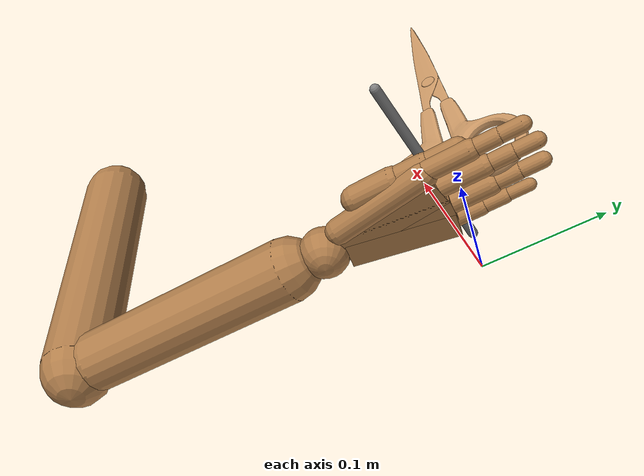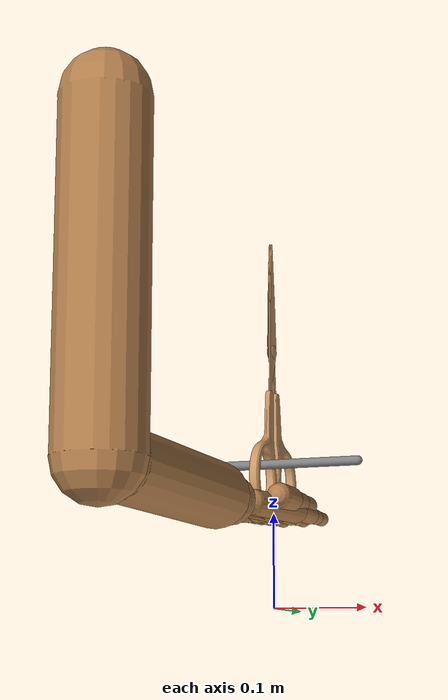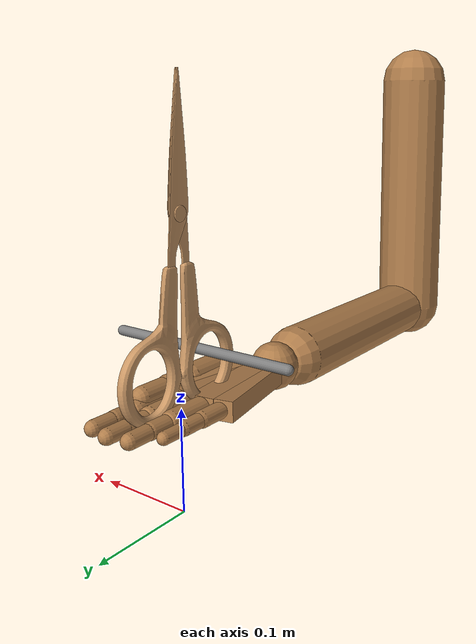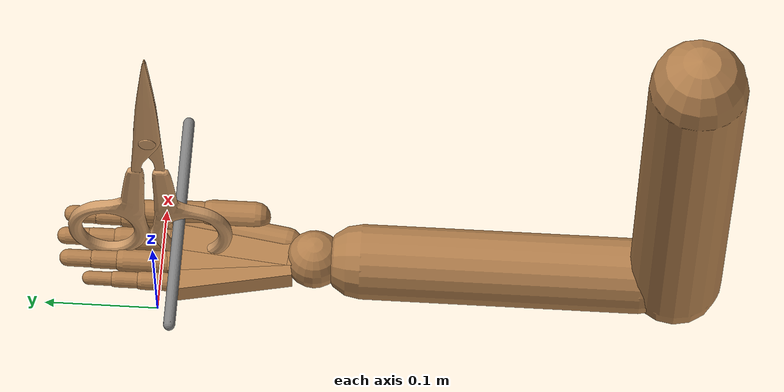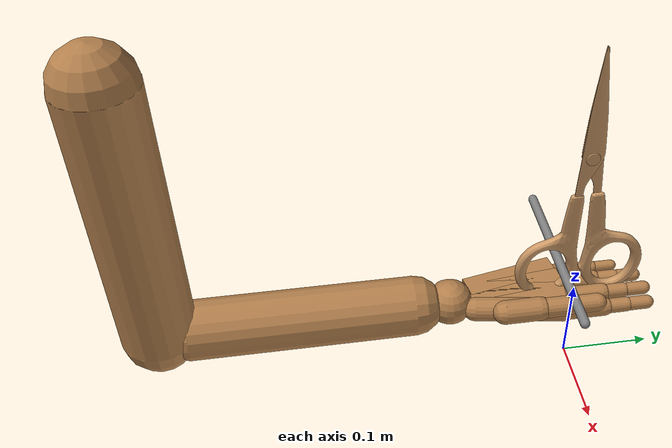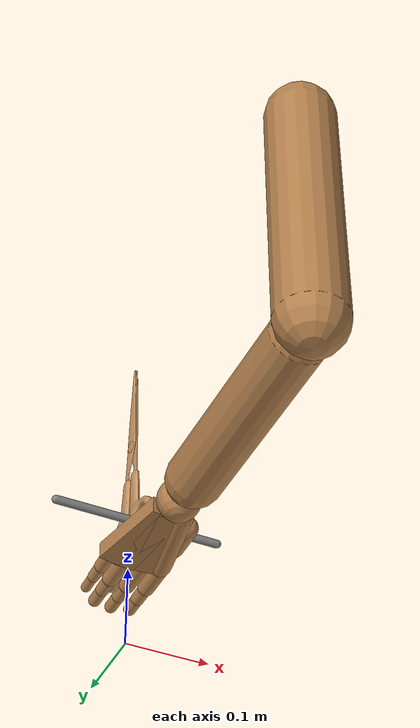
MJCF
<?xml version="1.0" encoding="utf-8"?>
<mujoco model="scissor">
	<compiler angle="radian" coordinate="local" inertiafromgeom="true" meshdir="stls/"/>
	<option integrator="RK4" timestep="0.0001"/>
	<size nstack="10000" nconmax="150"/>

	<!-- default classes -->
	<default>
		<default class="scissor">
			<mesh scale="0.035 0.035 0.035"/>
			<!-- Need to change the joint pos value according with the scale -->
			<!-- The joint pos with scale x is x*(0 -0.099609 0.762755) -->
			<joint pos="0 -0.003486315 0.026696425" range="0 2.5132741228718" armature="0.001" damping="0.001" limited="true" type="hinge"/>
			<geom type="mesh" rgba=".8 .6 .4 1"/>
			<default class="scissor_contact">
				<geom type="mesh" mass="0" friction="1 0.005 0.0001" rgba="1 1 1 0"/>
			</default>
		</default>

		<default class="Adroit">
			<geom friction="1 0.005 0.001" condim="3" margin="0.000" contype="1" conaffinity="1"/>
			<joint limited="true" damping="0.05" armature=".001" margin="0.01" frictionloss="0.001"/>
			<tendon limited="true"/>
			<site size="0.005" rgba=".4 .9 .4 0"/>
			<default class="D_Touch">
				<site type="box" size="0.009 0.004 0.013" pos="0 -.004 .018" rgba=".8 .8 .8 0" group="4"/>
			</default>
			<default class="DC_Hand">
				<geom contype="1" conaffinity="0" material="self" group="2"/>
			</default>
		</default>

		<default class="humanoid">
			<geom type="capsule" material="self" group="2"/>
			<default class="stiff_medium">
				<joint stiffness="10" damping="2"/>
			</default>
			<default class="sensor_site">
				<site type="sphere" size="0.01" group="4" rgba="1 0 0 0"/>
			</default>
		</default>

	</default>

	<!-- assets -->
	<asset>
		<include file="scissor_assets.xml"/>
		<material name="self" rgba=".7 .5 .3 1"/>
	</asset>

	<visual>
		<scale forcewidth="0.01" contactwidth="0.003"/>
	</visual>

	<!-- contact pairs -->
	<contact>
		<include file="contacts/hand_contacts.xml"/>
		<include file="contacts/hand_scissor_contacts.xml"/>
	</contact>

	<!-- tendons -->
	<tendon>
		<include file="hand_tendon.xml"/>
	</tendon>

	<worldbody>
		<light diffuse="1 1 1" dir="-0 1.3 -1.3" directional="true" exponent="1" pos="0 0 1.3" specular=".1 .1 .1" castshadow="false"/>
		<include file="body/scissor.xml"/>
		<include file="body/arm.xml"/>
		<geom name="stick" type="capsule" fromto="-0.1 -0.025 0.15 0.1 -0.025 0.15" size="0.005" condim="4"/>
	</worldbody>
</mujoco>

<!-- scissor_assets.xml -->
<mujoco>
	<mesh class="scissor" file="scissor/knob.stl"/>
	<mesh class="scissor" file="scissor/scb.stl"/>
	<mesh class="scissor" file="scissor/sct.stl"/>
	<mesh class="scissor" file="scissor/scb_handle.stl"/>
	<mesh class="scissor" file="scissor/sct_handle.stl"/>
	<mesh class="scissor" file="scissor/scb_handle000.stl"/>
	<mesh class="scissor" file="scissor/scb_handle001.stl"/>
	<mesh class="scissor" file="scissor/scb_handle002.stl"/>
	<mesh class="scissor" file="scissor/scb_handle003.stl"/>
	<mesh class="scissor" file="scissor/scb_handle004.stl"/>
	<mesh class="scissor" file="scissor/scb_handle005.stl"/>
	<mesh class="scissor" file="scissor/scb_handle006.stl"/>
	<mesh class="scissor" file="scissor/scb_handle007.stl"/>
	<mesh class="scissor" file="scissor/scb_handle008.stl"/>
	<mesh class="scissor" file="scissor/scb_handle009.stl"/>
	<mesh class="scissor" file="scissor/sct_handle000.stl"/>
	<mesh class="scissor" file="scissor/sct_handle001.stl"/>
	<mesh class="scissor" file="scissor/sct_handle002.stl"/>
	<mesh class="scissor" file="scissor/sct_handle003.stl"/>
	<mesh class="scissor" file="scissor/sct_handle004.stl"/>
	<mesh class="scissor" file="scissor/sct_handle005.stl"/>
	<mesh class="scissor" file="scissor/sct_handle006.stl"/>
	<mesh class="scissor" file="scissor/sct_handle007.stl"/>
	<mesh class="scissor" file="scissor/sct_handle008.stl"/>
	<mesh class="scissor" file="scissor/sct_handle009.stl"/>
</mujoco>

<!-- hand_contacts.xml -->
<mujoco>
<pair geom1="C_rfmiddle" geom2="C_mf" margin="10" gap="100"/>
<pair geom1="C_rfmiddle" geom2="C_mfdistal" margin="10" gap="100"/>
<pair geom1="C_rfmiddle" geom2="C_mfmiddle" margin="10" gap="100"/>
<pair geom1="C_rfmiddle" geom2="C_mfproximal" margin="10" gap="100"/>
<pair geom1="C_rfdistal" geom2="C_mf" margin="10" gap="100"/>
<pair geom1="C_rfdistal" geom2="C_mfmiddle" margin="10" gap="100"/>
<pair geom1="C_rfdistal" geom2="C_mfproximal" margin="10" gap="100"/>
<pair geom1="C_rfproximal" geom2="C_mf" margin="10" gap="100"/>
<pair geom1="C_rfproximal" geom2="C_mfdistal" margin="10" gap="100"/>
<pair geom1="C_rfproximal" geom2="C_mfmiddle" margin="10" gap="100"/>
<pair geom1="C_rfproximal" geom2="C_mfproximal" margin="10" gap="100"/>
<pair geom1="C_mfmiddle" geom2="C_ff" margin="10" gap="100"/>
<pair geom1="C_mfmiddle" geom2="C_ffdistal" margin="10" gap="100"/>
<pair geom1="C_mfmiddle" geom2="C_ffmiddle" margin="10" gap="100"/>
<pair geom1="C_mfmiddle" geom2="C_ffproximal" margin="10" gap="100"/>
<pair geom1="C_mfdistal" geom2="C_ff" margin="10" gap="100"/>
<pair geom1="C_mfdistal" geom2="C_ffmiddle" margin="10" gap="100"/>
<pair geom1="C_mfdistal" geom2="C_ffproximal" margin="10" gap="100"/>
<pair geom1="C_mfproximal" geom2="C_ff" margin="10" gap="100"/>
<pair geom1="C_mfproximal" geom2="C_ffdistal" margin="10" gap="100"/>
<pair geom1="C_mfproximal" geom2="C_ffmiddle" margin="10" gap="100"/>
<pair geom1="C_mfproximal" geom2="C_ffproximal" margin="10" gap="100"/>
<pair geom1="C_rfmiddle" geom2="C_lf" margin="10" gap="100"/>
<pair geom1="C_rfmiddle" geom2="C_lfdistal" margin="10" gap="100"/>
<pair geom1="C_rfmiddle" geom2="C_lfmiddle" margin="10" gap="100"/>
<pair geom1="C_rfmiddle" geom2="C_lfproximal" margin="10" gap="100"/>
<pair geom1="C_rfdistal" geom2="C_lf" margin="10" gap="100"/>
<pair geom1="C_rfdistal" geom2="C_lfmiddle" margin="10" gap="100"/>
<pair geom1="C_rfdistal" geom2="C_lfproximal" margin="10" gap="100"/>
<pair geom1="C_rfproximal" geom2="C_lf" margin="10" gap="100"/>
<pair geom1="C_rfproximal" geom2="C_lfdistal" margin="10" gap="100"/>
<pair geom1="C_rfproximal" geom2="C_lfmiddle" margin="10" gap="100"/>
<pair geom1="C_rfproximal" geom2="C_lfproximal" margin="10" gap="100"/>
</mujoco>

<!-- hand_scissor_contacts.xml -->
<mujoco>
<pair geom1="C_th" geom2="sct_handle000" margin="10" gap="20"/>
<pair geom1="C_th" geom2="sct_handle001" margin="10" gap="20"/>
<pair geom1="C_th" geom2="sct_handle002" margin="10" gap="20"/>
<pair geom1="C_th" geom2="sct_handle003" margin="10" gap="20"/>
<pair geom1="C_th" geom2="sct_handle004" margin="10" gap="20"/>
<pair geom1="C_th" geom2="sct_handle005" margin="10" gap="20"/>
<pair geom1="C_th" geom2="sct_handle006" margin="10" gap="20"/>
<pair geom1="C_th" geom2="sct_handle007" margin="10" gap="20"/>
<pair geom1="C_th" geom2="sct_handle008" margin="10" gap="20"/>
<pair geom1="C_th" geom2="sct_handle009" margin="10" gap="20"/>
<pair geom1="C_ff" geom2="scb_handle000" margin="10" gap="20"/>
<pair geom1="C_ff" geom2="scb_handle001" margin="10" gap="20"/>
<pair geom1="C_ff" geom2="scb_handle002" margin="10" gap="20"/>
<pair geom1="C_ff" geom2="scb_handle003" margin="10" gap="20"/>
<pair geom1="C_ff" geom2="scb_handle004" margin="10" gap="20"/>
<pair geom1="C_ff" geom2="scb_handle005" margin="10" gap="20"/>
<pair geom1="C_ff" geom2="scb_handle006" margin="10" gap="20"/>
<pair geom1="C_ff" geom2="scb_handle007" margin="10" gap="20"/>
<pair geom1="C_ff" geom2="scb_handle008" margin="10" gap="20"/>
<pair geom1="C_ff" geom2="scb_handle009" margin="10" gap="20"/>
<pair geom1="C_mf" geom2="scb_handle000" margin="10" gap="20"/>
<pair geom1="C_mf" geom2="scb_handle001" margin="10" gap="20"/>
<pair geom1="C_mf" geom2="scb_handle002" margin="10" gap="20"/>
<pair geom1="C_mf" geom2="scb_handle003" margin="10" gap="20"/>
<pair geom1="C_mf" geom2="scb_handle004" margin="10" gap="20"/>
<pair geom1="C_mf" geom2="scb_handle005" margin="10" gap="20"/>
<pair geom1="C_mf" geom2="scb_handle006" margin="10" gap="20"/>
<pair geom1="C_mf" geom2="scb_handle007" margin="10" gap="20"/>
<pair geom1="C_mf" geom2="scb_handle008" margin="10" gap="20"/>
<pair geom1="C_mf" geom2="scb_handle009" margin="10" gap="20"/>
<pair geom1="C_rf" geom2="scb_handle000" margin="10" gap="20"/>
<pair geom1="C_rf" geom2="scb_handle001" margin="10" gap="20"/>
<pair geom1="C_rf" geom2="scb_handle002" margin="10" gap="20"/>
<pair geom1="C_rf" geom2="scb_handle003" margin="10" gap="20"/>
<pair geom1="C_rf" geom2="scb_handle004" margin="10" gap="20"/>
<pair geom1="C_rf" geom2="scb_handle005" margin="10" gap="20"/>
<pair geom1="C_rf" geom2="scb_handle006" margin="10" gap="20"/>
<pair geom1="C_rf" geom2="scb_handle007" margin="10" gap="20"/>
<pair geom1="C_rf" geom2="scb_handle008" margin="10" gap="20"/>
<pair geom1="C_rf" geom2="scb_handle009" margin="10" gap="20"/>
</mujoco>

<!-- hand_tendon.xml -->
<mujoco>
<fixed name="T_FFJ3r" range="-0.018 0.018" user="1204">
	<joint joint="FFJ3" coef="0.010"/>
</fixed>
<fixed name="T_FFJ3l" range="-0.018 0.018" user="1205">
	<joint joint="FFJ3" coef="-0.010"/>
</fixed>
<fixed name="T_FFJ2u" range="-0.007 0.030" user="1202">
	<joint joint="FFJ2" coef="0.010"/>
</fixed>
<fixed name="T_FFJ2d" range="-0.030 0.007" user="1203">
	<joint joint="FFJ2" coef="-0.010"/>
</fixed>
<fixed name="T_FFJ1c" range="-0.0010 0.0010">
	<joint joint="FFJ0" coef="0.00705"/>
	<joint joint="FFJ1" coef="-0.00805"/>
</fixed>
<fixed name="T_FFJ1u" range="-0.007 0.030" user="1200">
	<joint joint="FFJ0" coef="0.00705"/>
	<joint joint="FFJ1" coef="0.00805"/>
</fixed>
<fixed name="T_FFJ1d" range="-0.030 0.007" user="1201">
	<joint joint="FFJ0" coef="-0.00705"/>
	<joint joint="FFJ1" coef="-0.00805"/>
</fixed>
<fixed name="T_MFJ3r" range="-0.018 0.018" user="1210">
	<joint joint="MFJ3" coef="0.010"/>
</fixed>
<fixed name="T_MFJ3l" range="-0.018 0.018" user="1211">
	<joint joint="MFJ3" coef="-0.010"/>
</fixed>
<fixed name="T_MFJ2u" range="-0.007 0.030" user="1208">
	<joint joint="MFJ2" coef="0.010"/>
</fixed>
<fixed name="T_MFJ2d" range="-0.030 0.007" user="1209">
	<joint joint="MFJ2" coef="-0.010"/>
</fixed>
<fixed name="T_MFJ1c" range="-0.001 0.001">
	<joint joint="MFJ0" coef="0.00705"/>
	<joint joint="MFJ1" coef="-0.00805"/>
</fixed>
<fixed name="T_MFJ1u" range="-0.007 0.030" user="1206">
	<joint joint="MFJ0" coef="0.00705"/>
	<joint joint="MFJ1" coef="0.00805"/>
</fixed>
<fixed name="T_MFJ1d" range="-0.030 0.007" user="1207">
	<joint joint="MFJ0" coef="-0.00705"/>
	<joint joint="MFJ1" coef="-0.00805"/>
</fixed>
<fixed name="T_RFJ3r" range="-0.018 0.018" user="1216">
	<joint joint="RFJ3" coef="0.010"/>
</fixed>
<fixed name="T_RFJ3l" range="-0.018 0.018" user="1217">
	<joint joint="RFJ3" coef="-0.010"/>
</fixed>
<fixed name="T_RFJ2u" range="-0.007 0.030" user="1214">
	<joint joint="RFJ2" coef="0.010"/>
</fixed>
<fixed name="T_RFJ2d" range="-0.030 0.007" user="1215">
	<joint joint="RFJ2" coef="-0.010"/>
</fixed>
<fixed name="T_RFJ1c" range="-0.001 0.001">
	<joint joint="RFJ0" coef="0.00705"/>
	<joint joint="RFJ1" coef="-0.00805"/>
</fixed>
<fixed name="T_RFJ1u" range="-0.007 0.030" user="1212">
	<joint joint="RFJ0" coef="0.00705"/>
	<joint joint="RFJ1" coef="0.00805"/>
</fixed>
<fixed name="T_RFJ1d" range="-0.030 0.007" user="1213">
	<joint joint="RFJ0" coef="-0.00705"/>
	<joint joint="RFJ1" coef="-0.00805"/>
</fixed>
<fixed name="T_THJ4a" range="-0.018 0.018" user="1234">
	<joint joint="THJ4" coef="0.01636"/>
</fixed>
<fixed name="T_THJ4c" range="-0.018 0.018" user="1235">
	<joint joint="THJ4" coef="-0.01636"/>
</fixed>
<fixed name="T_THJ3u" range="-0.007 0.030" user="1232">
	<joint joint="THJ3" coef="0.010"/>
</fixed>
<fixed name="T_THJ3d" range="-0.030 0.007" user="1233">
	<joint joint="THJ3" coef="-0.010"/>
</fixed>
<fixed name="T_THJ2u" range="-0.018 0.018" user="1230">
	<joint joint="THJ2" coef="0.011"/>
</fixed>
<fixed name="T_THJ2d" range="-0.018 0.018" user="1231">
	<joint joint="THJ2" coef="-0.011"/>
</fixed>
<fixed name="T_THJ1r" range="-0.018 0.018" user="1228">
	<joint joint="THJ1" coef="0.011"/>
</fixed>
<fixed name="T_THJ1l" range="-0.018 0.018" user="1229">
	<joint joint="THJ1" coef="-0.011"/>
</fixed>
<fixed name="T_THJ0r" range="-0.030 0.007" user="1226">
	<joint joint="THJ0" coef="0.009"/>
</fixed>
<fixed name="T_THJ0l" range="-0.007 0.030" user="1227">
	<joint joint="THJ0" coef="-0.009"/>
</fixed>
<fixed name="T_LFJ3r" range="-0.018 0.018">
	<joint joint="LFJ3" coef="0.010"/>
</fixed>
<fixed name="T_LFJ3l" range="-0.018 0.018">
	<joint joint="LFJ3" coef="-0.010"/>
</fixed>
<fixed name="T_LFJ2u" range="-0.007 0.030">
	<joint joint="LFJ2" coef="0.010"/>
</fixed>
<fixed name="T_LFJ2d" range="-0.030 0.007">
	<joint joint="LFJ2" coef="-0.010"/>
</fixed>
<fixed name="T_LFJ1c" range="-0.001 0.001">
	<joint joint="LFJ0" coef="0.00705"/>
	<joint joint="LFJ1" coef="-0.00805"/>
</fixed>
<fixed name="T_LFJ1u" range="-0.007 0.030">
	<joint joint="LFJ0" coef="0.00705"/>
	<joint joint="LFJ1" coef="0.00805"/>
</fixed>
<fixed name="T_LFJ1d" range="-0.030 0.007">
	<joint joint="LFJ0" coef="-0.00705"/>
	<joint joint="LFJ1" coef="-0.00805"/>
</fixed>
</mujoco>

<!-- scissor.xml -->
<mujoco>
<body pos="0 0 0.25" childclass="scissor">
	<freejoint/>
	<geom name="knob" mesh="knob"/>
	<geom name="scb" mesh="scb"/>
	<geom name="scb_handle" mesh="scb_handle" contype="0" conaffinity="0"/>
	<geom class="scissor_contact" name="scb_handle000" mesh="scb_handle000"/>
	<geom class="scissor_contact" name="scb_handle001" mesh="scb_handle001"/>
	<geom class="scissor_contact" name="scb_handle002" mesh="scb_handle002"/>
	<geom class="scissor_contact" name="scb_handle003" mesh="scb_handle003"/>
	<geom class="scissor_contact" name="scb_handle004" mesh="scb_handle004"/>
	<geom class="scissor_contact" name="scb_handle005" mesh="scb_handle005"/>
	<geom class="scissor_contact" name="scb_handle006" mesh="scb_handle006"/>
	<geom class="scissor_contact" name="scb_handle007" mesh="scb_handle007"/>
	<geom class="scissor_contact" name="scb_handle008" mesh="scb_handle008"/>
	<geom class="scissor_contact" name="scb_handle009" mesh="scb_handle009"/>
	<body>
		<joint name="knob" axis="1 0 0"/>
		<geom name="sct" mesh="sct"/>
		<geom name="sct_handle" mesh="sct_handle" contype="0" conaffinity="0"/>
		<geom class="scissor_contact" name="sct_handle000" mesh="sct_handle000"/>
		<geom class="scissor_contact" name="sct_handle001" mesh="sct_handle001"/>
		<geom class="scissor_contact" name="sct_handle002" mesh="sct_handle002"/>
		<geom class="scissor_contact" name="sct_handle003" mesh="sct_handle003"/>
		<geom class="scissor_contact" name="sct_handle004" mesh="sct_handle004"/>
		<geom class="scissor_contact" name="sct_handle005" mesh="sct_handle005"/>
		<geom class="scissor_contact" name="sct_handle006" mesh="sct_handle006"/>
		<geom class="scissor_contact" name="sct_handle007" mesh="sct_handle007"/>
		<geom class="scissor_contact" name="sct_handle008" mesh="sct_handle008"/>
		<geom class="scissor_contact" name="sct_handle009" mesh="sct_handle009"/>
	</body>
</body>
</mujoco>

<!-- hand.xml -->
<mujoco>
<body name="wrist" pos="-0.0 0 0.3">
	<inertial pos="0.003 0.000 0.016" quat="0.504 0.496 0.495 0.504" mass="0.3" diaginertia="0.001 0.001 0.001"/>
	<joint name="WRJ0" type="hinge" pos="0 0 0" axis="1 0 0" range="-1 1" damping="0" armature=".005" user="1122"/>
	<body name="wrist1" pos="0 0 0">
		<joint name="WRJ1" type="hinge" pos="0 0 0" axis="0 1 0" range="-1.2 1.2" damping="0" armature=".005" user="1123"/>
		<geom class="DC_Hand" name="C_wrist1" type="sphere" size="0.001"/>
		<body name="wrist2" pos="0 0 0">
			<joint name="WRJ2" type="hinge" pos="0 0 0" axis="0 0 1" range="-3.14 0" damping="0" armature=".005"/>
			<geom class="DC_Hand" name="C_wrist" type="sphere" pos="0 0 0.01" quat=".707 .707 0 0" size=".025"/>
			<body name="palm" pos="0 0 0.034">
				<body name="ff_cmc" pos="0.033 0 0.095">
					<joint name="FFJ_CMC_X" type="hinge" pos="-0.02 0 -0.095" axis="0.095 0 -0.02" range="0 0.001"/>
					<joint name="FFJ_CMC_Z" type="hinge" pos="-0.02 0 -0.095" axis="0.02 0 0.095" range="-0.001 0.001"/>
					<geom class="DC_Hand" name="C_ff_cmc" type="capsule" pos="-0.01 0 -0.0475" size="0.013 .0475" euler="0 0.16 0"/>
					<geom class="DC_Hand" name="C_ff_cmc_trick" type="capsule" pos="-0.01 0 -0.0475" size="0.013 .0475" euler="0 0.16 0"/>
					<body name="ffknuckle" pos="0.0 0 0.0">
						<inertial pos="-0.000 0.000 0.000" quat="0.520 0.854 0.006 -0.003" mass="0.008" diaginertia="0.00001 0.00001 0.00001"/>
						<joint name="FFJ3" type="hinge" pos="0 0 0" axis="0 1 0" range="-0.136 0.136" user="1103"/>
						<body name="ffproximal" pos="0 0 0">
							<inertial pos="0.000 0.000 0.023" quat="0.707 -0.004 0.004 0.707" mass="0.014" diaginertia="0.00001 0.00001 0.00001"/>
							<joint name="FFJ2" type="hinge" pos="0 0 0" axis="1 0 0" range="0 1.571" user="1102"/>
							<geom class="DC_Hand" name="C_ffproximal" type="capsule" pos="0 0 .0225" size=".01 .0225"/>
							<geom class="DC_Hand" name="C_ffproximal_trick" type="capsule" pos="0 0 .0225" size=".01 .0225"/>
							<body name="ffmiddle" pos="0 0 0.045">
								<inertial pos="-0.000 -0.000 0.011" quat="0.707 0.000 -0.000 0.707" mass="0.012" diaginertia="0.00001 0.00001 0.00001"/>
								<joint name="FFJ1" type="hinge" pos="0 0 0" axis="1 0 0" range="0 1.571" user="1101"/>
								<geom class="DC_Hand" name="C_ffmiddle" type="capsule" pos="0 0 .0125" size=".00805 .0125"/>
								<body name="ffdistal" pos="0 0 0.025">
									<inertial pos="0 -0.000 0.015" quat="0.707 -0.003 0.003 0.707" mass="0.010" diaginertia="0.00001 0.00001 0.00001"/>
									<joint name="FFJ0" type="hinge" pos="0 0 0" axis="1 0 0" range="0 1.571" user="1100"/>
									<geom class="DC_Hand" name="C_ffdistal" type="capsule" pos="0 -.00 .012" size=".0075 .011 " condim="4" euler="0 0 0"/>
									<geom class="DC_Hand" name="C_ff" type="sphere" pos="0 0 .0195" size=".0075 " condim="4"/>
									<site name="S_fftip" type="capsule" pos="0 -.00 .012" size=".0075 .011 " rgba="0 0 0 0" euler="0 0 0"/>
									<site class="D_Touch" name="Tch_fftip"/>
								</body>
							</body>
						</body>
					</body>
				</body>
				<body name="mf_cmc" pos="0.011 0 0.099">
					<joint name="MFJ_CMC_X" type="hinge" pos="-0.011 0 -0.099" axis="0.099 0 -0.011" range="0 0.01"/>
					<joint name="MFJ_CMC_Z" type="hinge" pos="-0.011 0 -0.099" axis="0.011 0 0.099" range="-0.2 0.2"/>
					<geom class="DC_Hand" name="C_mf_cmc" type="box" pos="-0.0055 0 -0.0495" size=".013 0.01 .052" euler="0 0.11 0"/>
					<body name="mfknuckle" pos="0.0 0 0.0">
						<inertial pos="-0.000 0.000 0.000" quat="0.520 0.854 0.006 -0.003" mass="0.008" diaginertia="0.00001 0.00001 0.00001"/>
						<joint name="MFJ3" type="hinge" pos="0 0 0" axis="0 1 0" range="-0.136 0.136" user="1107"/>
						<body name="mfproximal" pos="0 0 0">
							<inertial pos="0.000 0.000 0.023" quat="0.707 -0.004 0.004 0.707" mass="0.014" diaginertia="0.00001 0.00001 0.00001"/>
							<joint name="MFJ2" type="hinge" pos="0 0 0" axis="1 0 0" range="0 1.571" user="1106"/>
							<geom class="DC_Hand" name="C_mfproximal" type="capsule" pos="0 0 .0225" size=".01 .0225"/>
							<body name="mfmiddle" pos="0 0 0.045">
								<inertial pos="-0.000 -0.000 0.012" quat="0.707 0.000 -0.000 0.707" mass="0.012" diaginertia="0.00001 0.00001 0.00001"/>
								<joint name="MFJ1" type="hinge" pos="0 0 0" axis="1 0 0" range="0 1.571" user="1105"/>
								<geom class="DC_Hand" name="C_mfmiddle" type="capsule" pos="0 0 .0125" size=".00805 .0125"/>
								<body name="mfdistal" pos="0 0 0.025">
									<inertial pos="0 -0.000 0.015" quat="0.707 -0.003 0.003 0.707" mass="0.010" diaginertia="0.00001 0.00001 0.00001"/>
									<joint name="MFJ0" type="hinge" pos="0 0 0" axis="1 0 0" range="0 1.571" user="1104"/>
									<geom class="DC_Hand" name="C_mfdistal" type="capsule" pos="0 0 .012" size=".0075 .011 " condim="4" euler="0 0 0"/>
									<geom class="DC_Hand" name="C_mf" type="sphere" pos="0.0 0 .018" size=".0075 " rgba="0 0 0 0"/>
									<site name="S_mftip" type="capsule" pos="0 0 .012" size=".0075 .011 " rgba="0 0 0 0" euler="0 0 0"/>
									<site class="D_Touch" name="Tch_mftip"/>
								</body>
							</body>
						</body>
					</body>
				</body>
				<body name="rf_cmc" pos="-0.011 0 0.095">
					<joint name="RFJ_CMC_X" type="hinge" pos="0.011 0 -0.095" axis="0.095 0 0.011" range="0 0.2"/>
					<joint name="RFJ_CMC_Z" type="hinge" pos="0.011 0 -0.095" axis="-0.011 0 0.095" range="-0.0 0.69"/>
					<geom class="DC_Hand" name="C_rf_cmc" type="box" pos="0.0055 0 -0.0475" size=".013  0.01 .055" euler="0 -0.11 0"/>
					<body name="rfknuckle" pos="-0.0 0 0.0">
						<inertial pos="-0.000 0.000 0.000" quat="0.520 0.854 0.006 -0.003" mass="0.008" diaginertia="0.00001 0.00001 0.00001"/>
						<joint name="RFJ3" type="hinge" pos="0 0 0" axis="0 1 0" range="-0.136 0.136" user="1111"/>
						<body name="rfproximal" pos="0 0 0">
							<inertial pos="0.000 0.000 0.023" quat="0.707 -0.004 0.004 0.707" mass="0.014" diaginertia="0.00001 0.00001 0.00001"/>
							<joint name="RFJ2" type="hinge" pos="0 0 0" axis="1 0 0" range="0 1.571" user="1110"/>
							<geom class="DC_Hand" name="C_rfproximal" type="capsule" pos="0 0 .0225" size=".01 .0225"/>
							<body name="rfmiddle" pos="0 0 0.045">
								<inertial pos="-0.000 -0.000 0.012" quat="0.707 0.000 -0.000 0.707" mass="0.012" diaginertia="0.00001 0.00001 0.00001"/>
								<joint name="RFJ1" type="hinge" pos="0 0 0" axis="1 0 0" range="0 1.571" user="1109"/>
								<geom class="DC_Hand" name="C_rfmiddle" type="capsule" pos="0 0 .0125" size=".00805 .0125"/>
								<body name="rfdistal" pos="0 0 0.025">
									<inertial pos="0 -0.000 0.015" quat="0.707 -0.003 0.003 0.707" mass="0.010" diaginertia="0.00001 0.00001 0.00001"/>
									<joint name="RFJ0" type="hinge" pos="0 0 0" axis="1 0 0" range="0 1.571" user="1108"/>
									<geom class="DC_Hand" name="C_rfdistal" type="capsule" pos="0 -.0 .012" size=".0075 .011 " condim="4" euler="0 0 0"/>
									<geom class="DC_Hand" name="C_rf" type="sphere" pos="0.0035 0 .016" size=".0075 " rgba="0 0 0 0"/>
									<site name="S_rftip" type="capsule" pos="0 0 .012" size=".0075 .011 " rgba="0 0 0 0" euler="0 0 0"/>
									<site class="D_Touch" name="Tch_rftip"/>
								</body>
							</body>
						</body>
					</body>
				</body>
				<body name="thbase" pos="0.034 -0.009 0.029" euler="0.  0. 0">
					<inertial pos="0 0 0" mass="0.010" diaginertia="0.00001 0.00001 0.00001"/>
					<joint name="THJ4" type="hinge" pos="0 0 0" axis="0 0 -1" range="-0.01 0.01" user="1121"/>
					<joint name="THJ2" type="hinge" pos="0 0 0" axis="0 1 0" range="-1 1" user="1119"/>
					<joint name="THJ3" type="hinge" pos="0 0 0" axis="1 0 0" range="-0. 1" user="1120"/>
					<body name="thproximal" pos="0 0 0" euler="0 0 -0.">
						<inertial pos="-0.000 -0.000 0.017" quat="0.982 -0.000 0.001 0.191" mass="0.016" diaginertia="0.00001 0.00001 0.00001"/>
						<geom class="DC_Hand" name="C_thproximal" type="capsule" pos="0 0 .019" size=".013 .019"/>
						<body name="thmiddle" pos="0 0 0.038">
							<inertial pos="0.000 -0.000 0.016" quat="1.000 -0.001 -0.007 0.003" mass="0.016" diaginertia="0.00001 0.00001 0.00001"/>
							<joint name="THJ1" type="hinge" pos="0 0 0" axis="0 1 0" range="-1.57 0" user="1118"/>
							<geom class="DC_Hand" name="C_thmiddle" type="capsule" pos="0 0 .016" size=".011 .016"/>
							<geom class="DC_Hand" name="C_trick" type="sphere" pos="0 0 0.026" size=".012" condim="4" rgba="0 0 0 0"/>
							<geom class="DC_Hand" name="C_thm" type="capsule" pos="0 0 .016" size=".011 .016"/>
							<body name="thdistal" pos="0 0 0.032">
								<inertial pos="0.000 -0.000 0.016" quat="0.999 -0.005 -0.047 0.005" mass="0.016" diaginertia="0.00001 0.00001 0.00001"/>
								<joint name="THJ0" type="hinge" pos="0 0 0" axis="0 1 0" range="-1.571 -0.1" user="1117"/>
								<geom class="DC_Hand" name="C_thdistal" type="capsule" pos="0 0 .016837" size=".01 .015" condim="4" euler="0 0 0"/>
								<geom class="DC_Hand" name="C_th" type="sphere" pos="-0.01 -0.0 .021837" size=".003" rgba=" 0 0 0 0"/>
								<site name="S_thtip" type="sphere" pos="-0.0 -0. .021837" size=".005 " rgba="0 0 0 0" euler="0 0 0"/>
								<site class="D_Touch" name="Tch_thtip" size="0.005 0.011 0.016" pos="-.005 0 0.02"/>
							</body>
						</body>
					</body>
				</body>
				<body name="lf_cmc" pos="-0.03 0 0.095">
					<joint name="LFJ_CMC_X" type="hinge" pos="0.03 0 -0.095" axis="0.095 0 0.02" range="0 0.2"/>
					<joint name="LFJ_CMC_Z" type="hinge" pos="0.03 0 -0.095" axis="-0.02 0 0.095" range="0 0.9"/>
					<geom class="DC_Hand" name="C_lf_cmc" type="box" pos="0.01 0 -0.0475" size=".013 0.01 .052" euler="0 -0.2 0"/>
					<body name="lfknuckle" pos="-0.0 0 0.0">
						<inertial pos="-0.000 0.000 0.000" quat="0.520 0.854 0.006 -0.003" mass="0.008" diaginertia="0.00001 0.00001 0.00001"/>
						<joint name="LFJ3" type="hinge" pos="0 0 0" axis="0 1 0" range="-0.136 0.136" user="1115"/>
						<body name="lfproximal" pos="0 0 0">
							<joint name="LFJ2" type="hinge" pos="0 0 0" axis="1 0 0" range="0 1.571" user="1114"/>
							<geom class="DC_Hand" name="C_lfproximal" type="capsule" pos="0 0 .0125" size=".008 .015"/>
							<body name="lfmiddle" pos="0 0 0.025">
								<joint name="LFJ1" type="hinge" pos="0 0 0" axis="1 0 0" range="0 1.571" user="1113"/>
								<geom class="DC_Hand" name="C_lfmiddle" type="capsule" pos="0 0 .0125" size=".00705 .0125"/>
								<body name="lfdistal" pos="0 0 0.025">
									<joint name="LFJ0" type="hinge" pos="0 0 0" axis="1 0 0" range="0 1.571"/>
									<geom class="DC_Hand" name="C_lfdistal" type="capsule" pos="0 0 .012" size=".006 .011 " condim="4" euler="0 0 0"/>
									<geom class="DC_Hand" name="C_lf" type="sphere" pos="0.00 0 .016" size=".006 "/>
									<site name="S_lftip" type="capsule" pos="0 0 .012" size=".006 .011 " rgba="0 0 0 0" euler="0 0 0"/>
								</body>
							</body>
						</body>
					</body>
				</body>
			</body>
		</body>
	</body>
</body>
</mujoco>

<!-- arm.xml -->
<mujoco>
<body name="hand mount" pos="0 -.45 0.2" euler="-1.57079632 0 0">
	<inertial mass="0.100" pos="0 0 0" diaginertia="0.001 0.001 0.001"/>
	<body name="upperarm" childclass="Adroit" pos="0 -0.2 0">
		<joint name="UARM1" type="hinge" pos="0 0 0" axis="1 0 0" range="-1.57 1.57" damping="0" armature="1"/>
		<geom class="DC_Hand" name="C_upperarm1" type="sphere" size="0.001"/>
		<body name="upperarm2" pos="0 0 0">
			<geom class="DC_Hand" name="C_upperarm2" type="sphere" size="0.001"/>
			<joint name="UARM2" type="hinge" pos="0 0 0" axis="0 0 1" range="-1.57 0" damping="0" armature="1"/>
			<body name="upperarm3" pos="0 0 0">
				<joint name="UARM3" type="hinge" pos="0 0 0" axis="0 -1 0" range="-1.57 1.57" damping="0" armature="1"/>
				<geom class="DC_Hand" name="C_upperarm" type="capsule" size="0.04 0.15 " pos="0 0.15 0" euler="-1.57 0 0"/>
				<body name="forearm" childclass="Adroit" pos="0 0.3 0" euler="0 0 0">
					<inertial pos="0.001 -0.002 0.15" quat="0.982 -0.016 0.000 -0.188" mass="4" diaginertia="0.01 0.01 0.0075"/>
					<joint name="FARM1" type="hinge" pos="0 0 0" axis="1 0 0" range="-1.57 1.57" damping="0" armature="1"/>
					<geom class="DC_Hand" name="C_forearm" type="capsule" size="0.0325 0.12 " pos="0 -.0 0.15" euler="0 0 -1.57"/>
					<include file="body/hand.xml"/>
				</body>
			</body>
		</body>
	</body>
</body>
</mujoco>
